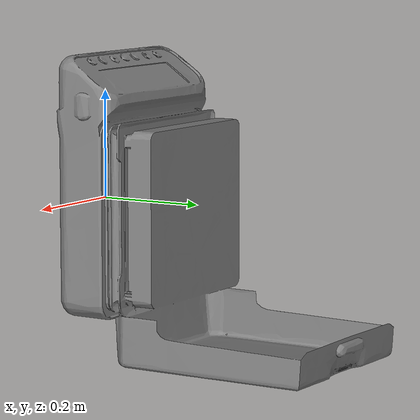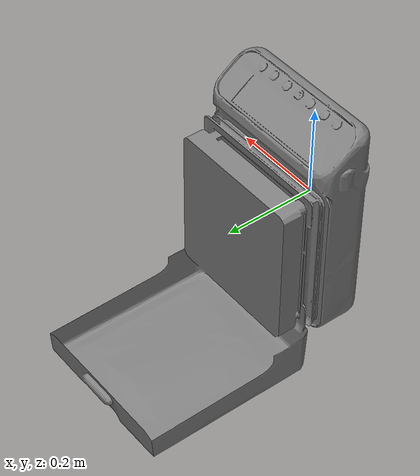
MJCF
<mujoco model="HotPlateHPR6">
  <!-- XML 位于 model/object，返回到 assets -->
  <compiler angle="radian" meshdir="../../assets"/>

  <option gravity="0 0 -9.81"/>

  <asset>
    <!-- 主 mesh -->
    <mesh
      name="hotplate_hpr6_mesh"
      file="HotPlateHPR6/base.obj"
      scale="0.3 0.3 0.3"/>
  </asset>

  <worldbody>
    <body name="hotplate_hpr6">

      <!-- 视觉几何 -->
      <geom
        name="hotplate_hpr6_visual"
        type="mesh"
        mesh="hotplate_hpr6_mesh"
        contype="0"
        conaffinity="0"/>

      <!-- 碰撞几何 -->
      <geom
        name="hotplate_hpr6_collision"
        type="mesh"
        mesh="hotplate_hpr6_mesh"
        rgba="0.8 0.8 0.8 1"
        contype="1"
        conaffinity="1"
        friction="1.0 0.3 0.001"/>

    </body>
  </worldbody>
</mujoco>
